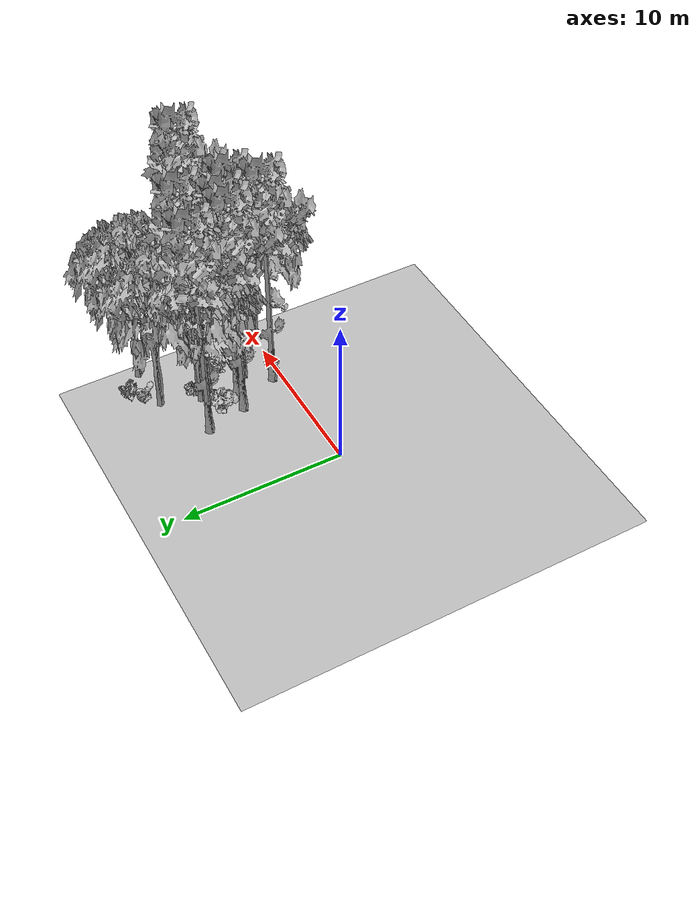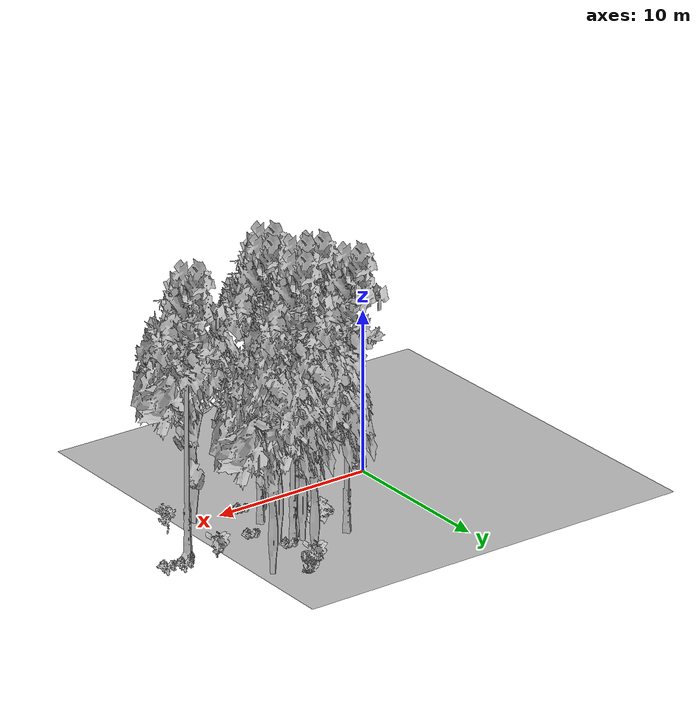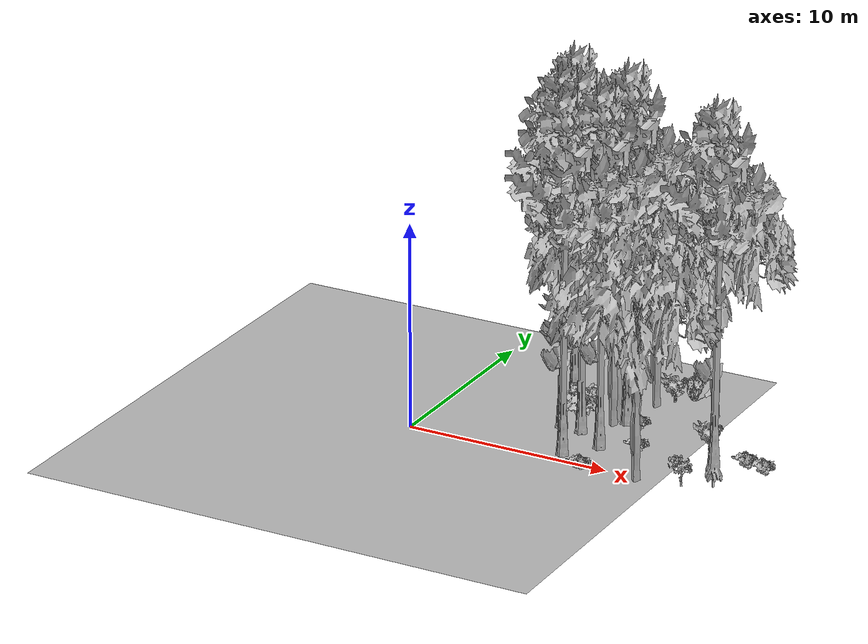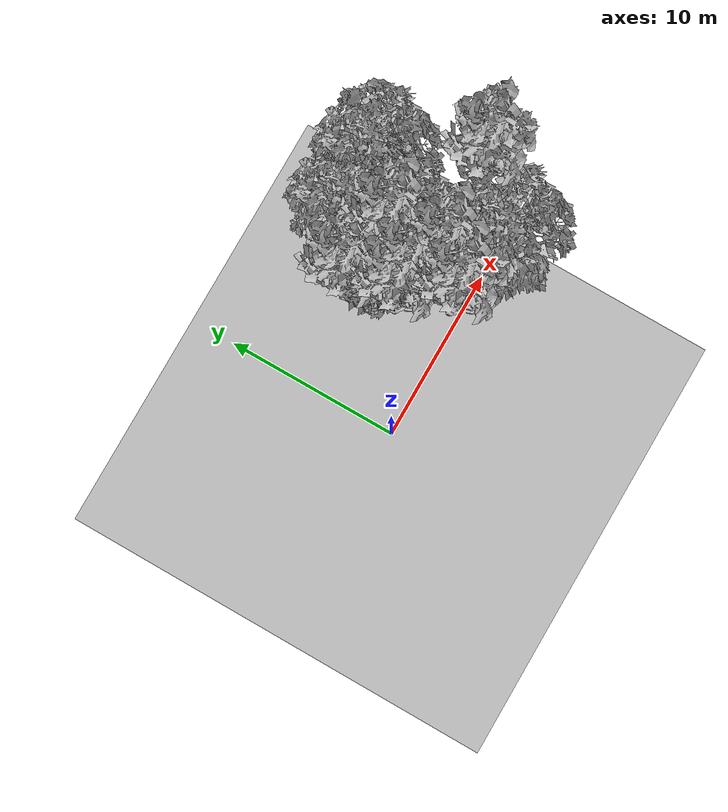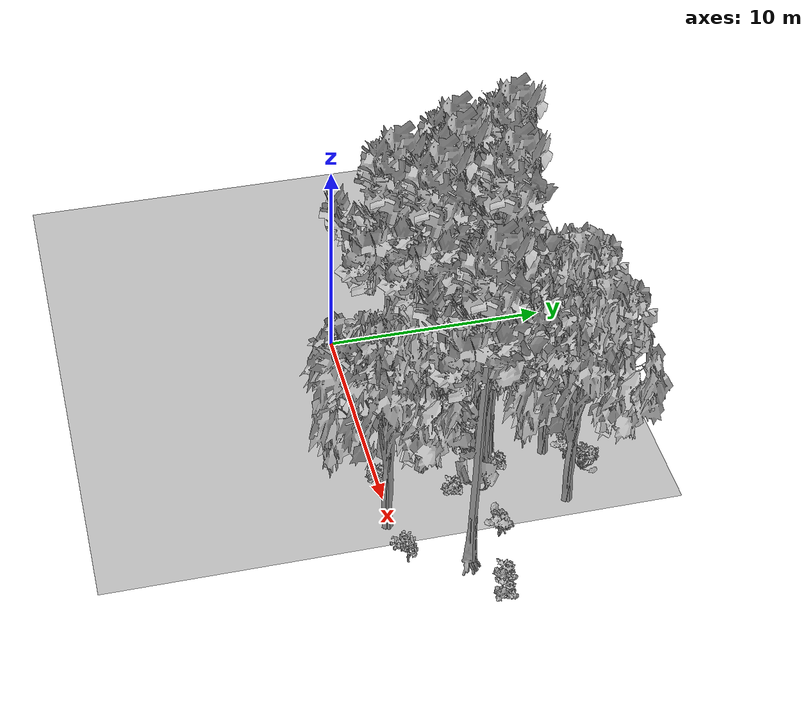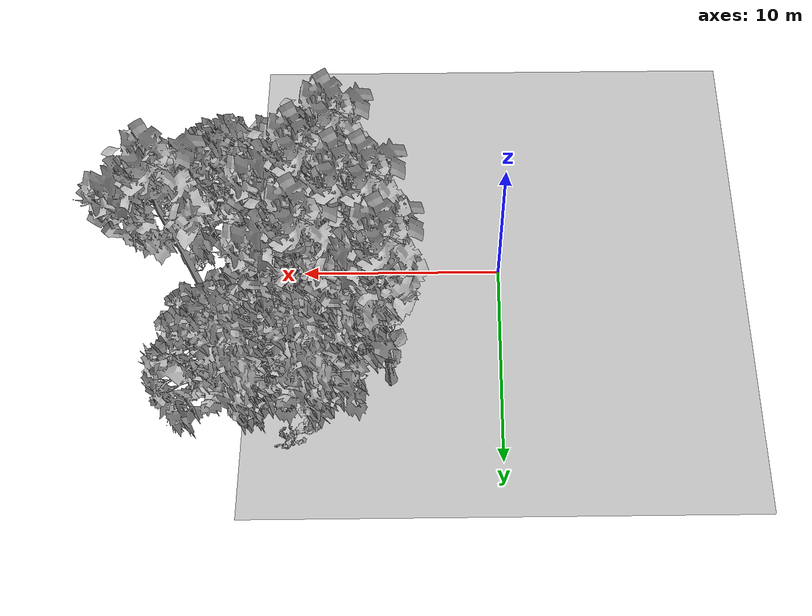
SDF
<sdf version="1.7">
 <world name="default">
  <model name="ground_plane">
   <static>1</static>
   <link name="link">
    <collision name="collision">
     <pose>-50 0 0 0 -0 0</pose>
     <geometry><plane><normal>0 0 1</normal><size>80 80</size></plane></geometry>
     <surface><contact><ode><min_depth>0.01</min_depth><max_vel>0</max_vel></ode></contact></surface>
    </collision>
    <visual name="grass">
     <cast_shadows>0</cast_shadows>
     <geometry>
      <mesh>
       <scale>0.46714285714285714 0.46714285714285714 0.1</scale>
       <uri>file://grass_plane/meshes/grass_plane.dae</uri>
      </mesh>
     </geometry>
    </visual>
   </link>
  </model>
  <model name="Tree 19">
   <static>1</static>
   <pose>11.65281882690229 7.673728056305144 0 1.57079 -0 0</pose>
   <link name="link">
    <collision name="collision">
     <geometry><mesh><scale>3.5 5 3.5</scale><uri>model://tree_2/meshes/tree_2.obj</uri></mesh></geometry>
    </collision>
    <visual name="visual">
     <geometry><mesh><scale>3.5 5 3.5</scale><uri>model://tree_2/meshes/tree_2.obj</uri></mesh></geometry>
    </visual>
   </link>
  </model>
  <model name="Tree 39">
   <static>1</static>
   <pose>7.4896502292248925 0.6322996705441852 0 1.57079 -0 0</pose>
   <link name="link">
    <collision name="collision">
     <geometry><mesh><scale>3.5 5 3.5</scale><uri>model://tree_9/meshes/tree_9.obj</uri></mesh></geometry>
    </collision>
    <visual name="visual">
     <geometry><mesh><scale>3.5 5 3.5</scale><uri>model://tree_9/meshes/tree_9.obj</uri></mesh></geometry>
    </visual>
   </link>
  </model>
  <model name="Tree 100">
   <static>1</static>
   <pose>11.497647648577725 -0.20701013857360806 0 1.57079 -0 0</pose>
   <link name="link">
    <collision name="collision">
     <geometry><mesh><scale>3.5 5 3.5</scale><uri>model://tree_2/meshes/tree_2.obj</uri></mesh></geometry>
    </collision>
    <visual name="visual">
     <geometry><mesh><scale>3.5 5 3.5</scale><uri>model://tree_2/meshes/tree_2.obj</uri></mesh></geometry>
    </visual>
   </link>
  </model>
  <model name="Tree 247">
   <static>1</static>
   <pose>6.0942115533216 3.288977140435648 0 1.57079 -0 0</pose>
   <link name="link">
    <collision name="collision">
     <geometry><mesh><scale>3.5 5 3.5</scale><uri>model://tree_9/meshes/tree_9.obj</uri></mesh></geometry>
    </collision>
    <visual name="visual">
     <geometry><mesh><scale>3.5 5 3.5</scale><uri>model://tree_9/meshes/tree_9.obj</uri></mesh></geometry>
    </visual>
   </link>
  </model>
  <model name="Tree 304">
   <static>1</static>
   <pose>7.927499906613427 4.654175935028597 0 1.57079 -0 0</pose>
   <link name="link">
    <collision name="collision">
     <geometry><mesh><scale>3.5 5 3.5</scale><uri>model://tree_2/meshes/tree_2.obj</uri></mesh></geometry>
    </collision>
    <visual name="visual">
     <geometry><mesh><scale>3.5 5 3.5</scale><uri>model://tree_2/meshes/tree_2.obj</uri></mesh></geometry>
    </visual>
   </link>
  </model>
  <model name="Tree 331">
   <static>1</static>
   <pose>9.13978740012135 4.640601954611313 0 1.57079 -0 0</pose>
   <link name="link">
    <collision name="collision">
     <geometry><mesh><scale>3.5 5 3.5</scale><uri>model://tree_2/meshes/tree_2.obj</uri></mesh></geometry>
    </collision>
    <visual name="visual">
     <geometry><mesh><scale>3.5 5 3.5</scale><uri>model://tree_2/meshes/tree_2.obj</uri></mesh></geometry>
    </visual>
   </link>
  </model>
  <model name="Tree 352">
   <static>1</static>
   <pose>7.890935727891012 5.183376427067465 0 1.57079 -0 0</pose>
   <link name="link">
    <collision name="collision">
     <geometry><mesh><scale>3.5 5 3.5</scale><uri>model://tree_2/meshes/tree_2.obj</uri></mesh></geometry>
    </collision>
    <visual name="visual">
     <geometry><mesh><scale>3.5 5 3.5</scale><uri>model://tree_2/meshes/tree_2.obj</uri></mesh></geometry>
    </visual>
   </link>
  </model>
  <model name="Tree 389">
   <static>1</static>
   <pose>14.033936454919719 2.764054354801175 0 1.57079 -0 0</pose>
   <link name="link">
    <collision name="collision">
     <geometry><mesh><scale>3.5 5 3.5</scale><uri>model://tree_9/meshes/tree_9.obj</uri></mesh></geometry>
    </collision>
    <visual name="visual">
     <geometry><mesh><scale>3.5 5 3.5</scale><uri>model://tree_9/meshes/tree_9.obj</uri></mesh></geometry>
    </visual>
   </link>
  </model>
  <model name="Tree 461">
   <static>1</static>
   <pose>8.732488936381237 7.497089804161476 0 1.57079 -0 0</pose>
   <link name="link">
    <collision name="collision">
     <geometry><mesh><scale>3.5 5 3.5</scale><uri>model://tree_2/meshes/tree_2.obj</uri></mesh></geometry>
    </collision>
    <visual name="visual">
     <geometry><mesh><scale>3.5 5 3.5</scale><uri>model://tree_2/meshes/tree_2.obj</uri></mesh></geometry>
    </visual>
   </link>
  </model>
  <model name="Tree 527">
   <static>1</static>
   <pose>7.137560524158708 3.185918388160161 0 1.57079 -0 0</pose>
   <link name="link">
    <collision name="collision">
     <geometry><mesh><scale>3.5 5 3.5</scale><uri>model://tree_9/meshes/tree_9.obj</uri></mesh></geometry>
    </collision>
    <visual name="visual">
     <geometry><mesh><scale>3.5 5 3.5</scale><uri>model://tree_9/meshes/tree_9.obj</uri></mesh></geometry>
    </visual>
   </link>
  </model>
  <model name="Tree 538">
   <static>1</static>
   <pose>5.4134512551053575 5.85228937658713 0 1.57079 -0 0</pose>
   <link name="link">
    <collision name="collision">
     <geometry><mesh><scale>3.5 5 3.5</scale><uri>model://tree_9/meshes/tree_9.obj</uri></mesh></geometry>
    </collision>
    <visual name="visual">
     <geometry><mesh><scale>3.5 5 3.5</scale><uri>model://tree_9/meshes/tree_9.obj</uri></mesh></geometry>
    </visual>
   </link>
  </model>
  <model name="Tree 562">
   <static>1</static>
   <pose>8.639891220661802 2.07244383023923 0 1.57079 -0 0</pose>
   <link name="link">
    <collision name="collision">
     <geometry><mesh><scale>3.5 5 3.5</scale><uri>model://tree_9/meshes/tree_9.obj</uri></mesh></geometry>
    </collision>
    <visual name="visual">
     <geometry><mesh><scale>3.5 5 3.5</scale><uri>model://tree_9/meshes/tree_9.obj</uri></mesh></geometry>
    </visual>
   </link>
  </model>
  <model name="Tree 567">
   <static>1</static>
   <pose>8.533046439650988 5.067436079277272 0 1.57079 -0 0</pose>
   <link name="link">
    <collision name="collision">
     <geometry><mesh><scale>3.5 5 3.5</scale><uri>model://tree_9/meshes/tree_9.obj</uri></mesh></geometry>
    </collision>
    <visual name="visual">
     <geometry><mesh><scale>3.5 5 3.5</scale><uri>model://tree_9/meshes/tree_9.obj</uri></mesh></geometry>
    </visual>
   </link>
  </model>
  <model name="Bush 4">
   <static>1</static>
   <pose>13.098810937254775 4.306901267663015 0 1.57079 -0 0</pose>
   <link name="link">
    <collision name="collision">
     <geometry><mesh><scale>2 2 2</scale><uri>model://bush_0/meshes/bush_0.obj</uri></mesh></geometry>
     <surface><contact><collide_without_contact>false</collide_without_contact></contact></surface>
    </collision>
    <visual name="visual">
     <geometry><mesh><scale>2 2 2</scale><uri>model://bush_0/meshes/bush_0.obj</uri></mesh></geometry>
    </visual>
   </link>
  </model>
  <model name="Bush 65">
   <static>1</static>
   <pose>6.463239539159709 4.3070269189079795 0 1.57079 -0 0</pose>
   <link name="link">
    <collision name="collision">
     <geometry><mesh><scale>2 2 2</scale><uri>model://bush_1/meshes/bush_1.obj</uri></mesh></geometry>
     <surface><contact><collide_without_contact>false</collide_without_contact></contact></surface>
    </collision>
    <visual name="visual">
     <geometry><mesh><scale>2 2 2</scale><uri>model://bush_1/meshes/bush_1.obj</uri></mesh></geometry>
    </visual>
   </link>
  </model>
  <model name="Bush 198">
   <static>1</static>
   <pose>13.656154514141846 0.2139236968367868 0 1.57079 -0 0</pose>
   <link name="link">
    <collision name="collision">
     <geometry><mesh><scale>2 2 2</scale><uri>model://bush_5/meshes/bush_5.obj</uri></mesh></geometry>
     <surface><contact><collide_without_contact>false</collide_without_contact></contact></surface>
    </collision>
    <visual name="visual">
     <geometry><mesh><scale>2 2 2</scale><uri>model://bush_5/meshes/bush_5.obj</uri></mesh></geometry>
    </visual>
   </link>
  </model>
  <model name="Bush 221">
   <static>1</static>
   <pose>15.049644781695882 3.950986574939165 0 1.57079 -0 0</pose>
   <link name="link">
    <collision name="collision">
     <geometry><mesh><scale>2 2 2</scale><uri>model://bush_2/meshes/bush_2.obj</uri></mesh></geometry>
     <surface><contact><collide_without_contact>false</collide_without_contact></contact></surface>
    </collision>
    <visual name="visual">
     <geometry><mesh><scale>2 2 2</scale><uri>model://bush_2/meshes/bush_2.obj</uri></mesh></geometry>
    </visual>
   </link>
  </model>
  <model name="Bush 265">
   <static>1</static>
   <pose>8.992180967934999 5.337902005386404 0 1.57079 -0 0</pose>
   <link name="link">
    <collision name="collision">
     <geometry><mesh><scale>2 2 2</scale><uri>model://bush_2/meshes/bush_2.obj</uri></mesh></geometry>
     <surface><contact><collide_without_contact>false</collide_without_contact></contact></surface>
    </collision>
    <visual name="visual">
     <geometry><mesh><scale>2 2 2</scale><uri>model://bush_2/meshes/bush_2.obj</uri></mesh></geometry>
    </visual>
   </link>
  </model>
  <model name="Bush 452">
   <static>1</static>
   <pose>10.120129868264343 8.930544037156992 0 1.57079 -0 0</pose>
   <link name="link">
    <collision name="collision">
     <geometry><mesh><scale>2 2 2</scale><uri>model://bush_4/meshes/bush_4.obj</uri></mesh></geometry>
     <surface><contact><collide_without_contact>false</collide_without_contact></contact></surface>
    </collision>
    <visual name="visual">
     <geometry><mesh><scale>2 2 2</scale><uri>model://bush_4/meshes/bush_4.obj</uri></mesh></geometry>
    </visual>
   </link>
  </model>
  <model name="Bush 468">
   <static>1</static>
   <pose>8.595692787384571 0.08029708816106051 0 1.57079 -0 0</pose>
   <link name="link">
    <collision name="collision">
     <geometry><mesh><scale>2 2 2</scale><uri>model://bush_2/meshes/bush_2.obj</uri></mesh></geometry>
     <surface><contact><collide_without_contact>false</collide_without_contact></contact></surface>
    </collision>
    <visual name="visual">
     <geometry><mesh><scale>2 2 2</scale><uri>model://bush_2/meshes/bush_2.obj</uri></mesh></geometry>
    </visual>
   </link>
  </model>
  <model name="Bush 553">
   <static>1</static>
   <pose>9.388509953246938 8.342395726633434 0 1.57079 -0 0</pose>
   <link name="link">
    <collision name="collision">
     <geometry><mesh><scale>2 2 2</scale><uri>model://bush_0/meshes/bush_0.obj</uri></mesh></geometry>
     <surface><contact><collide_without_contact>false</collide_without_contact></contact></surface>
    </collision>
    <visual name="visual">
     <geometry><mesh><scale>2 2 2</scale><uri>model://bush_0/meshes/bush_0.obj</uri></mesh></geometry>
    </visual>
   </link>
  </model>
  <model name="Bush 567">
   <static>1</static>
   <pose>16.021641605081108 3.692229013270101 0 1.57079 -0 0</pose>
   <link name="link">
    <collision name="collision">
     <geometry><mesh><scale>2 2 2</scale><uri>model://bush_2/meshes/bush_2.obj</uri></mesh></geometry>
     <surface><contact><collide_without_contact>false</collide_without_contact></contact></surface>
    </collision>
    <visual name="visual">
     <geometry><mesh><scale>2 2 2</scale><uri>model://bush_2/meshes/bush_2.obj</uri></mesh></geometry>
    </visual>
   </link>
  </model>
  <model name="Bush 596">
   <static>1</static>
   <pose>10.014592826337285 3.0968031601433665 0 1.57079 -0 0</pose>
   <link name="link">
    <collision name="collision">
     <geometry><mesh><scale>2 2 2</scale><uri>model://bush_2/meshes/bush_2.obj</uri></mesh></geometry>
     <surface><contact><collide_without_contact>false</collide_without_contact></contact></surface>
    </collision>
    <visual name="visual">
     <geometry><mesh><scale>2 2 2</scale><uri>model://bush_2/meshes/bush_2.obj</uri></mesh></geometry>
    </visual>
   </link>
  </model>
 </world>
</sdf>
